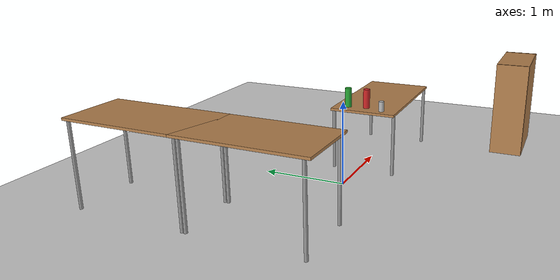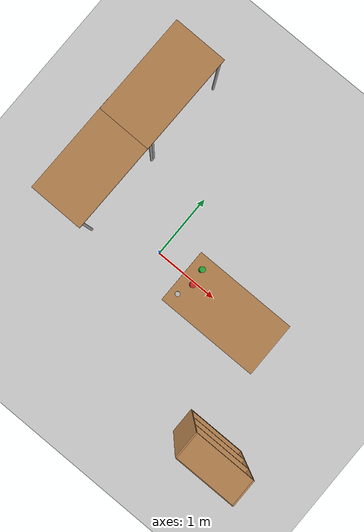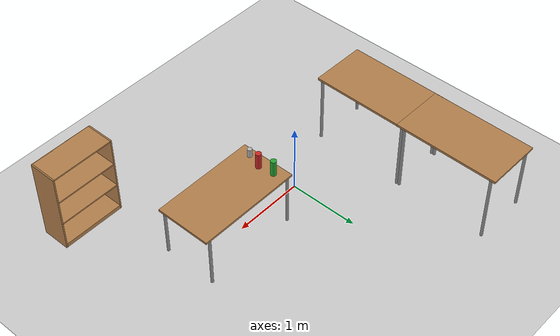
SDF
<sdf version="1.6">
 <world name="default">
  <model name="ground_plane">
   <static>1</static>
   <link name="link">
    <collision name="collision">
     <geometry><plane><normal>0 0 1</normal><size>100 100</size></plane></geometry>
     <surface><friction><ode><mu>100</mu><mu2>50</mu2></ode></friction></surface>
    </collision>
    <visual name="visual">
     <cast_shadows>0</cast_shadows>
     <geometry><plane><normal>0 0 1</normal><size>100 100</size></plane></geometry>
     <material>
      <script><uri>file://media/materials/scripts/gazebo.material</uri><name>Gazebo/Grey</name></script>
     </material>
    </visual>
   </link>
  </model>
  <model name="table">
   <static>1</static>
   <link name="link">
    <collision name="surface">
     <pose>0 0 1 0 -0 0</pose>
     <geometry><box><size>1.5 0.8 0.03</size></box></geometry>
     <surface><friction><ode><mu>0.6</mu><mu2>0.6</mu2></ode></friction></surface>
    </collision>
    <visual name="visual1">
     <pose>0 0 1 0 -0 0</pose>
     <geometry><box><size>1.5 0.8 0.03</size></box></geometry>
     <material>
      <script><uri>file://media/materials/scripts/gazebo.material</uri><name>Gazebo/Wood</name></script>
     </material>
    </visual>
    <collision name="front_left_leg">
     <pose>0.68 0.38 0.5 0 -0 0</pose>
     <geometry><cylinder><radius>0.02</radius><length>1</length></cylinder></geometry>
    </collision>
    <visual name="front_left_leg">
     <pose>0.68 0.38 0.5 0 -0 0</pose>
     <geometry><cylinder><radius>0.02</radius><length>1</length></cylinder></geometry>
     <material>
      <script><uri>file://media/materials/scripts/gazebo.material</uri><name>Gazebo/Grey</name></script>
     </material>
    </visual>
    <collision name="front_right_leg">
     <pose>0.68 -0.38 0.5 0 -0 0</pose>
     <geometry><cylinder><radius>0.02</radius><length>1</length></cylinder></geometry>
    </collision>
    <visual name="front_right_leg">
     <pose>0.68 -0.38 0.5 0 -0 0</pose>
     <geometry><cylinder><radius>0.02</radius><length>1</length></cylinder></geometry>
     <material>
      <script><uri>file://media/materials/scripts/gazebo.material</uri><name>Gazebo/Grey</name></script>
     </material>
    </visual>
    <collision name="back_right_leg">
     <pose>-0.68 -0.38 0.5 0 -0 0</pose>
     <geometry><cylinder><radius>0.02</radius><length>1</length></cylinder></geometry>
    </collision>
    <visual name="back_right_leg">
     <pose>-0.68 -0.38 0.5 0 -0 0</pose>
     <geometry><cylinder><radius>0.02</radius><length>1</length></cylinder></geometry>
     <material>
      <script><uri>file://media/materials/scripts/gazebo.material</uri><name>Gazebo/Grey</name></script>
     </material>
    </visual>
    <collision name="back_left_leg">
     <pose>-0.68 0.38 0.5 0 -0 0</pose>
     <geometry><cylinder><radius>0.02</radius><length>1</length></cylinder></geometry>
    </collision>
    <visual name="back_left_leg">
     <pose>-0.68 0.38 0.5 0 -0 0</pose>
     <geometry><cylinder><radius>0.02</radius><length>1</length></cylinder></geometry>
     <material>
      <script><uri>file://media/materials/scripts/gazebo.material</uri><name>Gazebo/Grey</name></script>
     </material>
    </visual>
   </link>
   <pose>-1.33827 0.322435 0 0 0 -1.58073</pose>
  </model>
  <model name="table_clone">
   <static>1</static>
   <link name="link">
    <collision name="surface">
     <pose>0 0 1 0 -0 0</pose>
     <geometry><box><size>1.5 0.8 0.03</size></box></geometry>
     <surface><friction><ode><mu>0.6</mu><mu2>0.6</mu2></ode></friction></surface>
    </collision>
    <visual name="visual1">
     <pose>0 0 1 0 -0 0</pose>
     <geometry><box><size>1.5 0.8 0.03</size></box></geometry>
     <material>
      <script><uri>file://media/materials/scripts/gazebo.material</uri><name>Gazebo/Wood</name></script>
     </material>
    </visual>
    <collision name="front_left_leg">
     <pose>0.68 0.38 0.5 0 -0 0</pose>
     <geometry><cylinder><radius>0.02</radius><length>1</length></cylinder></geometry>
    </collision>
    <visual name="front_left_leg">
     <pose>0.68 0.38 0.5 0 -0 0</pose>
     <geometry><cylinder><radius>0.02</radius><length>1</length></cylinder></geometry>
     <material>
      <script><uri>file://media/materials/scripts/gazebo.material</uri><name>Gazebo/Grey</name></script>
     </material>
    </visual>
    <collision name="front_right_leg">
     <pose>0.68 -0.38 0.5 0 -0 0</pose>
     <geometry><cylinder><radius>0.02</radius><length>1</length></cylinder></geometry>
    </collision>
    <visual name="front_right_leg">
     <pose>0.68 -0.38 0.5 0 -0 0</pose>
     <geometry><cylinder><radius>0.02</radius><length>1</length></cylinder></geometry>
     <material>
      <script><uri>file://media/materials/scripts/gazebo.material</uri><name>Gazebo/Grey</name></script>
     </material>
    </visual>
    <collision name="back_right_leg">
     <pose>-0.68 -0.38 0.5 0 -0 0</pose>
     <geometry><cylinder><radius>0.02</radius><length>1</length></cylinder></geometry>
    </collision>
    <visual name="back_right_leg">
     <pose>-0.68 -0.38 0.5 0 -0 0</pose>
     <geometry><cylinder><radius>0.02</radius><length>1</length></cylinder></geometry>
     <material>
      <script><uri>file://media/materials/scripts/gazebo.material</uri><name>Gazebo/Grey</name></script>
     </material>
    </visual>
    <collision name="back_left_leg">
     <pose>-0.68 0.38 0.5 0 -0 0</pose>
     <geometry><cylinder><radius>0.02</radius><length>1</length></cylinder></geometry>
    </collision>
    <visual name="back_left_leg">
     <pose>-0.68 0.38 0.5 0 -0 0</pose>
     <geometry><cylinder><radius>0.02</radius><length>1</length></cylinder></geometry>
     <material>
      <script><uri>file://media/materials/scripts/gazebo.material</uri><name>Gazebo/Grey</name></script>
     </material>
    </visual>
   </link>
   <pose>-1.32325 1.64119 0 0 0 -1.58073</pose>
  </model>
  <model name="bookshelf">
   <static>1</static>
   <link name="link">
    <inertial><mass>1</mass></inertial>
    <collision name="back">
     <pose>0 0.005 0.6 0 -0 0</pose>
     <geometry><box><size>0.9 0.01 1.2</size></box></geometry>
    </collision>
    <visual name="visual1">
     <pose>0 0.005 0.6 0 -0 0</pose>
     <geometry><box><size>0.9 0.01 1.2</size></box></geometry>
     <material>
      <script><uri>file://media/materials/scripts/gazebo.material</uri><name>Gazebo/Wood</name></script>
     </material>
    </visual>
    <collision name="left_side">
     <pose>0.45 -0.195 0.6 0 -0 0</pose>
     <geometry><box><size>0.02 0.4 1.2</size></box></geometry>
    </collision>
    <visual name="visual2">
     <pose>0.45 -0.195 0.6 0 -0 0</pose>
     <geometry><box><size>0.02 0.4 1.2</size></box></geometry>
     <material>
      <script><uri>file://media/materials/scripts/gazebo.material</uri><name>Gazebo/Wood</name></script>
     </material>
    </visual>
    <collision name="right_side">
     <pose>-0.45 -0.195 0.6 0 -0 0</pose>
     <geometry><box><size>0.02 0.4 1.2</size></box></geometry>
    </collision>
    <visual name="visual3">
     <pose>-0.45 -0.195 0.6 0 -0 0</pose>
     <geometry><box><size>0.02 0.4 1.2</size></box></geometry>
     <material>
      <script><uri>file://media/materials/scripts/gazebo.material</uri><name>Gazebo/Wood</name></script>
     </material>
    </visual>
    <collision name="bottom">
     <pose>0 -0.195 0.03 0 -0 0</pose>
     <geometry><box><size>0.88 0.4 0.06</size></box></geometry>
    </collision>
    <visual name="visual4">
     <pose>0 -0.195 0.03 0 -0 0</pose>
     <geometry><box><size>0.88 0.4 0.06</size></box></geometry>
     <material>
      <script><uri>file://media/materials/scripts/gazebo.material</uri><name>Gazebo/Wood</name></script>
     </material>
    </visual>
    <collision name="top">
     <pose>0 -0.195 1.19 0 -0 0</pose>
     <geometry><box><size>0.88 0.4 0.02</size></box></geometry>
    </collision>
    <visual name="visual5">
     <pose>0 -0.195 1.19 0 -0 0</pose>
     <geometry><box><size>0.88 0.4 0.02</size></box></geometry>
     <material>
      <script><uri>file://media/materials/scripts/gazebo.material</uri><name>Gazebo/Wood</name></script>
     </material>
    </visual>
    <collision name="low_shelf">
     <pose>0 -0.195 0.43 0 -0 0</pose>
     <geometry><box><size>0.88 0.4 0.02</size></box></geometry>
    </collision>
    <visual name="visual6">
     <pose>0 -0.195 0.43 0 -0 0</pose>
     <geometry><box><size>0.88 0.4 0.02</size></box></geometry>
     <material>
      <script><uri>file://media/materials/scripts/gazebo.material</uri><name>Gazebo/Wood</name></script>
     </material>
    </visual>
    <collision name="high_shelf">
     <pose>0 -0.195 0.8 0 -0 0</pose>
     <geometry><box><size>0.88 0.4 0.02</size></box></geometry>
    </collision>
    <visual name="visual7">
     <pose>0 -0.195 0.8 0 -0 0</pose>
     <geometry><box><size>0.88 0.4 0.02</size></box></geometry>
     <material>
      <script><uri>file://media/materials/scripts/gazebo.material</uri><name>Gazebo/Wood</name></script>
     </material>
    </visual>
   </link>
   <pose>2.23083 -1.80058 0 0 0 -3.14005</pose>
  </model>
  <model name="table_0">
   <static>1</static>
   <link name="link">
    <collision name="surface">
     <pose>0 0 1 0 -0 0</pose>
     <geometry><box><size>1.5 0.8 0.03</size></box></geometry>
     <surface><friction><ode><mu>0.6</mu><mu2>0.6</mu2></ode></friction></surface>
    </collision>
    <visual name="visual1">
     <pose>0 0 1 0 -0 0</pose>
     <geometry><box><size>1.5 0.8 0.03</size></box></geometry>
     <material>
      <script><uri>file://media/materials/scripts/gazebo.material</uri><name>Gazebo/Wood</name></script>
     </material>
    </visual>
    <collision name="front_left_leg">
     <pose>0.68 0.38 0.5 0 -0 0</pose>
     <geometry><cylinder><radius>0.02</radius><length>1</length></cylinder></geometry>
    </collision>
    <visual name="front_left_leg">
     <pose>0.68 0.38 0.5 0 -0 0</pose>
     <geometry><cylinder><radius>0.02</radius><length>1</length></cylinder></geometry>
     <material>
      <script><uri>file://media/materials/scripts/gazebo.material</uri><name>Gazebo/Grey</name></script>
     </material>
    </visual>
    <collision name="front_right_leg">
     <pose>0.68 -0.38 0.5 0 -0 0</pose>
     <geometry><cylinder><radius>0.02</radius><length>1</length></cylinder></geometry>
    </collision>
    <visual name="front_right_leg">
     <pose>0.68 -0.38 0.5 0 -0 0</pose>
     <geometry><cylinder><radius>0.02</radius><length>1</length></cylinder></geometry>
     <material>
      <script><uri>file://media/materials/scripts/gazebo.material</uri><name>Gazebo/Grey</name></script>
     </material>
    </visual>
    <collision name="back_right_leg">
     <pose>-0.68 -0.38 0.5 0 -0 0</pose>
     <geometry><cylinder><radius>0.02</radius><length>1</length></cylinder></geometry>
    </collision>
    <visual name="back_right_leg">
     <pose>-0.68 -0.38 0.5 0 -0 0</pose>
     <geometry><cylinder><radius>0.02</radius><length>1</length></cylinder></geometry>
     <material>
      <script><uri>file://media/materials/scripts/gazebo.material</uri><name>Gazebo/Grey</name></script>
     </material>
    </visual>
    <collision name="back_left_leg">
     <pose>-0.68 0.38 0.5 0 -0 0</pose>
     <geometry><cylinder><radius>0.02</radius><length>1</length></cylinder></geometry>
    </collision>
    <visual name="back_left_leg">
     <pose>-0.68 0.38 0.5 0 -0 0</pose>
     <geometry><cylinder><radius>0.02</radius><length>1</length></cylinder></geometry>
     <material>
      <script><uri>file://media/materials/scripts/gazebo.material</uri><name>Gazebo/Grey</name></script>
     </material>
    </visual>
   </link>
   <pose>1.17955 -0.060645 -0.238547 0 -0 0</pose>
  </model>
  <model name="pringles_red">
   <pose>0.607287 -0.058344 0.893108 1.9e-05 6.6e-05 1.59643</pose>
   <link name="link">
    <inertial>
     <mass>0.2</mass>
     <inertia>
      <ixx>0.000908</ixx>
      <ixy>0</ixy>
      <ixz>0</ixz>
      <iyy>0.000908</iyy>
      <iyz>0</iyz>
      <izz>0.0002025</izz>
     </inertia>
    </inertial>
    <collision name="collision">
     <geometry><cylinder><radius>0.04</radius><length>0.235</length></cylinder></geometry>
     <surface>
      <contact><ode><min_depth>0.005</min_depth></ode></contact>
      <friction><ode><mu>0.9</mu><mu2>0.9</mu2></ode></friction>
     </surface>
    </collision>
    <visual name="visual">
     <pose>0 0 0 3.1415 -0 0</pose>
     <geometry><cylinder><radius>0.04</radius><length>0.235</length></cylinder></geometry>
     <material>
      <script>
       <uri>model://pringles_red/material/scripts</uri>
       <uri>model://pringles_red/material/textures</uri>
       <name>Custom/PringlesRed</name>
      </script>
     </material>
    </visual>
   </link>
  </model>
  <model name="pringles_green">
   <pose>0.576722 0.165186 0.893136 -2.4e-05 -0 -2e-06</pose>
   <link name="link">
    <inertial>
     <mass>0.2</mass>
     <inertia>
      <ixx>0.000908</ixx>
      <ixy>0</ixy>
      <ixz>0</ixz>
      <iyy>0.000908</iyy>
      <iyz>0</iyz>
      <izz>0.0002025</izz>
     </inertia>
    </inertial>
    <collision name="collision">
     <geometry><cylinder><radius>0.04</radius><length>0.235</length></cylinder></geometry>
     <surface>
      <contact><ode><min_depth>0.005</min_depth></ode></contact>
      <friction><ode><mu>0.9</mu><mu2>0.9</mu2></ode></friction>
     </surface>
    </collision>
    <visual name="visual">
     <geometry><cylinder><radius>0.04</radius><length>0.235</length></cylinder></geometry>
     <material>
      <script>
       <uri>model://pringles_green/material/scripts</uri>
       <uri>model://pringles_green/material/textures</uri>
       <name>Custom/PringlesGreen</name>
      </script>
     </material>
    </visual>
   </link>
  </model>
  <model name="cocacola">
   <pose>0.5377 -0.272617 0.837579 0 -0 0</pose>
   <link name="link">
    <inertial>
     <mass>0.39</mass>
     <inertia><ixx>0.00058</ixx><ixy>0</ixy><ixz>0</ixz><iyy>0.00058</iyy><iyz>0</iyz><izz>0.00019</izz></inertia>
    </inertial>
    <collision name="collision">
     <geometry><cylinder><radius>0.03302</radius><length>0.12268</length></cylinder></geometry>
     <surface>
      <contact><ode><min_depth>0.005</min_depth></ode></contact>
      <friction><ode><mu>0.9</mu><mu2>0.9</mu2></ode></friction>
     </surface>
    </collision>
    <visual name="visual">
     <geometry><cylinder><radius>0.03302</radius><length>0.12268</length></cylinder></geometry>
     <material>
      <script>
       <uri>model://cocacola/materials/scripts</uri>
       <uri>model://cocacola/materials/textures</uri>
       <name>CocaCola/Diffuse</name>
      </script>
     </material>
    </visual>
   </link>
  </model>
 </world>
</sdf>
